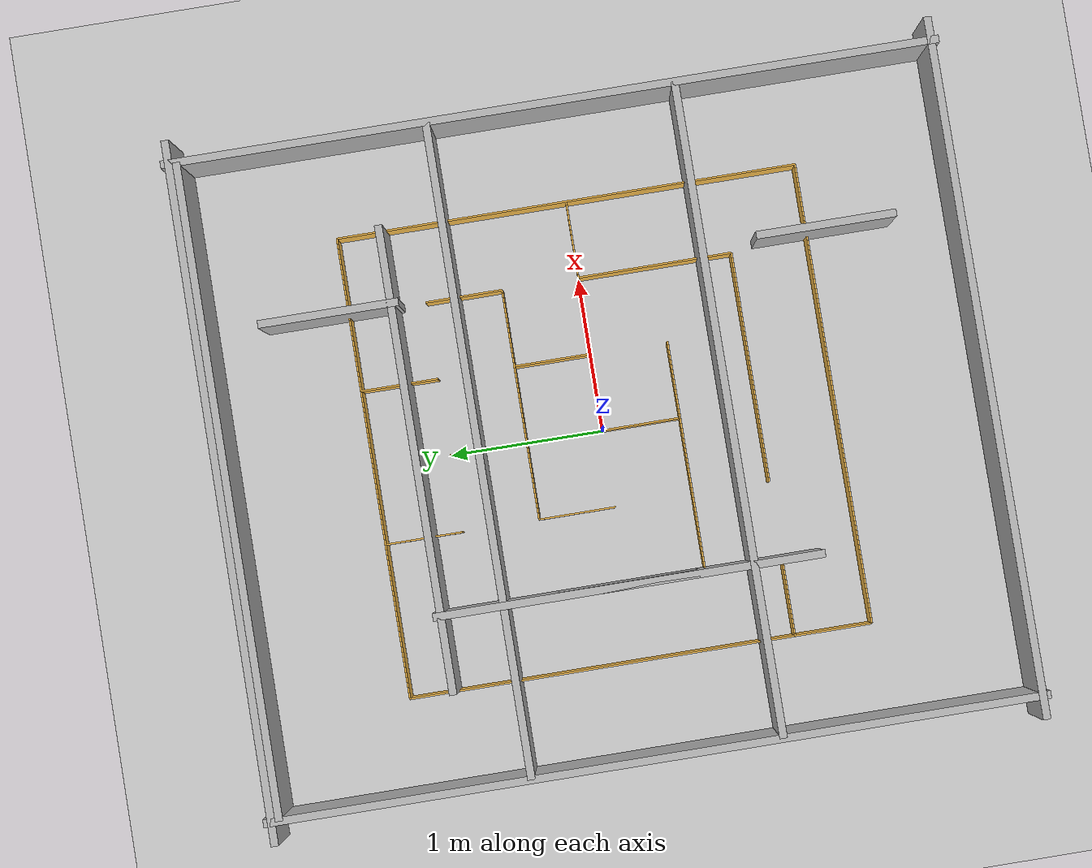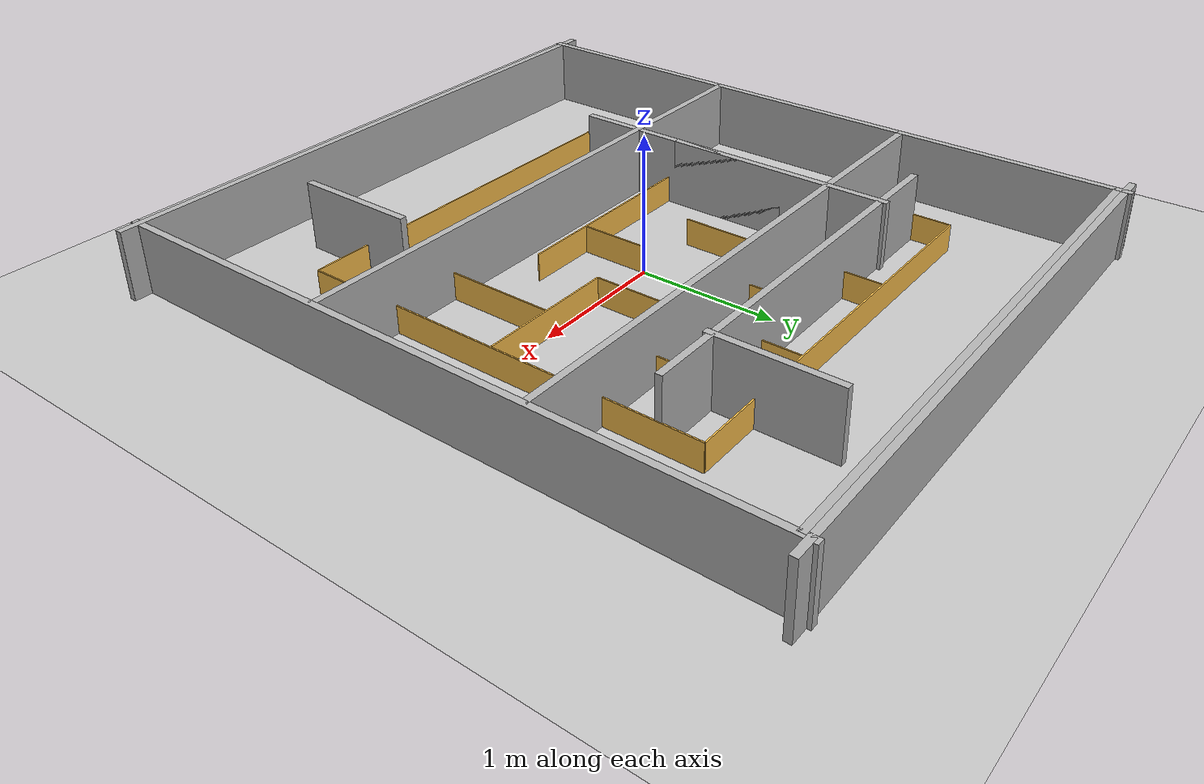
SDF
<?xml version="1.0"?>
<sdf version="1.8">
  <world name="maze_world">
    <!-- lighting & ground -->
    <include>
      <uri>model://sun</uri>
    </include>
    <include>
      <uri>model://ground_plane</uri>
    </include>

    <!-- Optional global physics (use defaults) -->
    <physics type="ode">
      <max_step_size>0.001</max_step_size>
      <real_time_update_rate>1000</real_time_update_rate>
      <real_time_factor>1</real_time_factor>
    </physics>

    <!-- ===== Outer & internal walls from your first snippet ===== -->

    <!-- ROW 1 horizontal walls -->
    <model name="wall_h_1">
      <static>true</static>
      <link name="link">
        <pose>0 1.2 0.25 0 0 0</pose>
        <collision name="collision">
          <geometry><box><size>3.0 0.05 0.5</size></box></geometry>
        </collision>
        <visual name="visual">
          <geometry><box><size>3.0 0.05 0.5</size></box></geometry>
        </visual>
      </link>
    </model>

    <!-- vertical walls, columns -->
    <model name="wall_v_1">
      <static>true</static>
      <link name="link">
        <pose>-1.0 0 0.25 0 0 0</pose>
        <collision name="collision">
          <geometry><box><size>0.05 2.5 0.5</size></box></geometry>
        </collision>
        <visual name="visual">
          <geometry><box><size>0.05 2.5 0.5</size></box></geometry>
        </visual>
      </link>
    </model>

    <!-- Horizontal top -->
    <model name="wall_h_top">
      <static>true</static>
      <link name="link">
        <pose>0 2.4 0.25 0 0 0</pose>
        <collision name="collision">
          <geometry><box><size>4.2 0.05 0.5</size></box></geometry>
        </collision>
        <visual name="visual">
          <geometry><box><size>4.2 0.05 0.5</size></box></geometry>
        </visual>
      </link>
    </model>

    <!-- Horizontal middle -->
    <model name="wall_h_mid">
      <static>true</static>
      <link name="link">
        <pose>0 0.8 0.25 0 0 0</pose>
        <collision name="collision">
          <geometry><box><size>4.2 0.05 0.5</size></box></geometry>
        </collision>
        <visual name="visual">
          <geometry><box><size>4.2 0.05 0.5</size></box></geometry>
        </visual>
      </link>
    </model>

    <!-- Horizontal lower -->
    <model name="wall_h_low">
      <static>true</static>
      <link name="link">
        <pose>0 -0.8 0.25 0 0 0</pose>
        <collision name="collision">
          <geometry><box><size>4.2 0.05 0.5</size></box></geometry>
        </collision>
        <visual name="visual">
          <geometry><box><size>4.2 0.05 0.5</size></box></geometry>
        </visual>
      </link>
    </model>

    <!-- Internal short walls -->
    <model name="wall_block_1">
      <static>true</static>
      <link name="link">
        <pose>1.0 1.6 0.25 0 0 0</pose>
        <collision name="collision">
          <geometry><box><size>0.05 0.9 0.5</size></box></geometry>
        </collision>
        <visual name="visual">
          <geometry><box><size>0.05 0.9 0.5</size></box></geometry>
        </visual>
      </link>
    </model>

    <model name="wall_block_2">
      <static>true</static>
      <link name="link">
        <pose>-1.0 0.0 0.25 0 0 0</pose>
        <collision name="collision">
          <geometry><box><size>0.05 0.9 0.5</size></box></geometry>
        </collision>
        <visual name="visual">
          <geometry><box><size>0.05 0.9 0.5</size></box></geometry>
        </visual>
      </link>
    </model>

    <model name="wall_block_3">
      <static>true</static>
      <link name="link">
        <pose>1.05 -1.6 0.25 0 0 0</pose>
        <collision name="collision">
          <geometry><box><size>0.05 0.9 0.5</size></box></geometry>
        </collision>
        <visual name="visual">
          <geometry><box><size>0.05 0.9 0.5</size></box></geometry>
        </visual>
      </link>
    </model>

    <!-- Left / Right boundaries -->
    <model name="wall_left">
      <static>true</static>
      <link name="link">
        <pose>-2.1 0 0.25 0 0 0</pose>
        <collision name="collision">
          <geometry><box><size>0.05 5.0 0.5</size></box></geometry>
        </collision>
        <visual name="visual">
          <geometry><box><size>0.05 5.0 0.5</size></box></geometry>
        </visual>
      </link>
    </model>

    <model name="wall_right">
      <static>true</static>
      <link name="link">
        <pose>2.1 0 0.25 0 0 0</pose>
        <collision name="collision">
          <geometry><box><size>0.05 5.0 0.5</size></box></geometry>
        </collision>
        <visual name="visual">
          <geometry><box><size>0.05 5.0 0.5</size></box></geometry>
        </visual>
      </link>
    </model>

    <!-- Front / back boundaries -->
    <model name="wall_front">
      <static>true</static>
      <link name="link">
        <pose>0 -2.45 0.25 0 0 0</pose>
        <collision name="collision">
          <geometry><box><size>4.5 0.05 0.5</size></box></geometry>
        </collision>
        <visual name="visual">
          <geometry><box><size>4.5 0.05 0.5</size></box></geometry>
        </visual>
      </link>
    </model>

    <model name="wall_back">
      <static>true</static>
      <link name="link">
        <pose>0 2.45 0.25 0 0 0</pose>
        <collision name="collision">
          <geometry><box><size>4.5 0.05 0.5</size></box></geometry>
        </collision>
        <visual name="visual">
          <geometry><box><size>4.5 0.05 0.5</size></box></geometry>
        </visual>
      </link>
    </model>

    <!-- ===== Embedded "my_maze" model from your second snippet ===== -->
    <!-- Shifted by (-1.5, -1.5, 0) so its 0..3 x/y extent sits within the -2.25..2.25 boundaries above -->
    <model name="my_maze">
      <static>true</static>
      <pose>-1.5 -1.5 0 0 0 0</pose>

      <link name="Wall_1">
        <pose>0 1.5 0 0 0 -1.5708</pose>
        <collision name="Wall_1_Collision">
          <pose>0 0 0.1 0 0 0</pose>
          <geometry><box><size>3 0.01 0.2</size></box></geometry>
        </collision>
        <visual name="Wall_1_Visual">
          <pose>0 0 0.1 0 0 0</pose>
          <geometry><box><size>3 0.01 0.2</size></box></geometry>
          <material>
            <script>
              <uri>file://media/materials/scripts/gazebo.material</uri>
              <name>Gazebo/Grey</name>
            </script>
            <ambient>1 0.764706 0.305882 1</ambient>
          </material>
        </visual>
      </link>

      <link name="Wall_2">
        <pose>1.5 0 0 0 0 0</pose>
        <collision name="Wall_2_Collision">
          <pose>0 0 0.1 0 0 0</pose>
          <geometry><box><size>3 0.01 0.2</size></box></geometry>
        </collision>
        <visual name="Wall_2_Visual">
          <pose>0 0 0.1 0 0 0</pose>
          <geometry><box><size>3 0.01 0.2</size></box></geometry>
          <material>
            <script>
              <uri>file://media/materials/scripts/gazebo.material</uri>
              <name>Gazebo/Grey</name>
            </script>
            <ambient>1 0.764706 0.305882 1</ambient>
          </material>
        </visual>
      </link>

      <link name="Wall_3">
        <pose>3 1.5 0 0 0 -1.5708</pose>
        <collision name="Wall_3_Collision">
          <pose>0 0 0.1 0 0 0</pose>
          <geometry><box><size>3 0.01 0.2</size></box></geometry>
        </collision>
        <visual name="Wall_3_Visual">
          <pose>0 0 0.1 0 0 0</pose>
          <geometry><box><size>3 0.01 0.2</size></box></geometry>
          <material>
            <script>
              <uri>file://media/materials/scripts/gazebo.material</uri>
              <name>Gazebo/Grey</name>
            </script>
            <ambient>1 0.764706 0.305882 1</ambient>
          </material>
        </visual>
      </link>

      <link name="Wall_4">
        <pose>1.5 3 0 0 0 0</pose>
        <collision name="Wall_4_Collision">
          <pose>0 0 0.1 0 0 0</pose>
          <geometry><box><size>3 0.01 0.2</size></box></geometry>
        </collision>
        <visual name="Wall_4_Visual">
          <pose>0 0 0.1 0 0 0</pose>
          <geometry><box><size>3 0.01 0.2</size></box></geometry>
          <material>
            <script>
              <uri>file://media/materials/scripts/gazebo.material</uri>
              <name>Gazebo/Grey</name>
            </script>
            <ambient>1 0.764706 0.305882 1</ambient>
          </material>
        </visual>
      </link>

      <link name="Wall_5">
        <pose>0.25 0.5 0 0 0 0</pose>
        <collision name="Wall_5_Collision">
          <pose>0 0 0.1 0 0 0</pose>
          <geometry><box><size>0.5 0.01 0.2</size></box></geometry>
        </collision>
        <visual name="Wall_5_Visual">
          <pose>0 0 0.1 0 0 0</pose>
          <geometry><box><size>0.5 0.01 0.2</size></box></geometry>
          <material>
            <script>
              <uri>file://media/materials/scripts/gazebo.material</uri>
              <name>Gazebo/Grey</name>
            </script>
            <ambient>1 0.764706 0.305882 1</ambient>
          </material>
        </visual>
      </link>

      <link name="Wall_6">
        <pose>1.75 0.5 0 0 0 0</pose>
        <collision name="Wall_6_Collision">
          <pose>0 0 0.1 0 0 0</pose>
          <geometry><box><size>1.5 0.01 0.2</size></box></geometry>
        </collision>
        <visual name="Wall_6_Visual">
          <pose>0 0 0.1 0 0 0</pose>
          <geometry><box><size>1.5 0.01 0.2</size></box></geometry>
          <material>
            <script>
              <uri>file://media/materials/scripts/gazebo.material</uri>
              <name>Gazebo/Grey</name>
            </script>
            <ambient>1 0.764706 0.305882 1</ambient>
          </material>
        </visual>
      </link>

      <link name="Wall_7">
        <pose>2.5 1 0 0 0 -1.5708</pose>
        <collision name="Wall_7_Collision">
          <pose>0 0 0.1 0 0 0</pose>
          <geometry><box><size>1 0.01 0.2</size></box></geometry>
        </collision>
        <visual name="Wall_7_Visual">
          <pose>0 0 0.1 0 0 0</pose>
          <geometry><box><size>1 0.01 0.2</size></box></geometry>
          <material>
            <script>
              <uri>file://media/materials/scripts/gazebo.material</uri>
              <name>Gazebo/Grey</name>
            </script>
            <ambient>1 0.764706 0.305882 1</ambient>
          </material>
        </visual>
      </link>

      <link name="Wall_8">
        <pose>2.5 1.5 0 0 0 0</pose>
        <collision name="Wall_8_Collision">
          <pose>0 0 0.1 0 0 0</pose>
          <geometry><box><size>1 0.01 0.2</size></box></geometry>
        </collision>
        <visual name="Wall_8_Visual">
          <pose>0 0 0.1 0 0 0</pose>
          <geometry><box><size>1 0.01 0.2</size></box></geometry>
          <material>
            <script>
              <uri>file://media/materials/scripts/gazebo.material</uri>
              <name>Gazebo/Grey</name>
            </script>
            <ambient>1 0.764706 0.305882 1</ambient>
          </material>
        </visual>
      </link>

      <link name="Wall_9">
        <pose>1.25 1 0 0 0 0</pose>
        <collision name="Wall_9_Collision">
          <pose>0 0 0.1 0 0 0</pose>
          <geometry><box><size>1.5 0.01 0.2</size></box></geometry>
        </collision>
        <visual name="Wall_9_Visual">
          <pose>0 0 0.1 0 0 0</pose>
          <geometry><box><size>1.5 0.01 0.2</size></box></geometry>
          <material>
            <script>
              <uri>file://media/materials/scripts/gazebo.material</uri>
              <name>Gazebo/Grey</name>
            </script>
            <ambient>1 0.764706 0.305882 1</ambient>
          </material>
        </visual>
      </link>

      <link name="Wall_10">
        <pose>1.5 1.25 0 0 0 -1.5708</pose>
        <collision name="Wall_10_Collision">
          <pose>0 0 0.1 0 0 0</pose>
          <geometry><box><size>0.5 0.01 0.2</size></box></geometry>
        </collision>
        <visual name="Wall_10_Visual">
          <pose>0 0 0.1 0 0 0</pose>
          <geometry><box><size>0.5 0.01 0.2</size></box></geometry>
          <material>
            <script>
              <uri>file://media/materials/scripts/gazebo.material</uri>
              <name>Gazebo/Grey</name>
            </script>
            <ambient>1 0.764706 0.305882 1</ambient>
          </material>
        </visual>
      </link>

      <link name="Wall_11">
        <pose>1 1.75 0 0 0 -1.5708</pose>
        <collision name="Wall_11_Collision">
          <pose>0 0 0.1 0 0 0</pose>
          <geometry><box><size>0.5 0.01 0.2</size></box></geometry>
        </collision>
        <visual name="Wall_11_Visual">
          <pose>0 0 0.1 0 0 0</pose>
          <geometry><box><size>0.5 0.01 0.2</size></box></geometry>
          <material>
            <script>
              <uri>file://media/materials/scripts/gazebo.material</uri>
              <name>Gazebo/Grey</name>
            </script>
            <ambient>1 0.764706 0.305882 1</ambient>
          </material>
        </visual>
      </link>

      <link name="Wall_12">
        <pose>0.5 1.75 0 0 0 -1.5708</pose>
        <collision name="Wall_12_Collision">
          <pose>0 0 0.1 0 0 0</pose>
          <geometry><box><size>1.5 0.01 0.2</size></box></geometry>
        </collision>
        <visual name="Wall_12_Visual">
          <pose>0 0 0.1 0 0 0</pose>
          <geometry><box><size>1.5 0.01 0.2</size></box></geometry>
          <material>
            <script>
              <uri>file://media/materials/scripts/gazebo.material</uri>
              <name>Gazebo/Grey</name>
            </script>
            <ambient>1 0.764706 0.305882 1</ambient>
          </material>
        </visual>
      </link>

      <link name="Wall_13">
        <pose>1.75 2 0 0 0 0</pose>
        <collision name="Wall_13_Collision">
          <pose>0 0 0.1 0 0 0</pose>
          <geometry><box><size>1.5 0.01 0.2</size></box></geometry>
        </collision>
        <visual name="Wall_13_Visual">
          <pose>0 0 0.1 0 0 0</pose>
          <geometry><box><size>1.5 0.01 0.2</size></box></geometry>
          <material>
            <script>
              <uri>file://media/materials/scripts/gazebo.material</uri>
              <name>Gazebo/Grey</name>
            </script>
            <ambient>1 0.764706 0.305882 1</ambient>
          </material>
        </visual>
      </link>

      <link name="Wall_14">
        <pose>2 1.75 0 0 0 -1.5708</pose>
        <collision name="Wall_14_Collision">
          <pose>0 0 0.1 0 0 0</pose>
          <geometry><box><size>0.5 0.01 0.2</size></box></geometry>
        </collision>
        <visual name="Wall_14_Visual">
          <pose>0 0 0.1 0 0 0</pose>
          <geometry><box><size>0.5 0.01 0.2</size></box></geometry>
          <material>
            <script>
              <uri>file://media/materials/scripts/gazebo.material</uri>
              <name>Gazebo/Grey</name>
            </script>
            <ambient>1 0.764706 0.305882 1</ambient>
          </material>
        </visual>
      </link>

      <link name="Wall_15">
        <pose>2.5 2.25 0 0 0 -1.5708</pose>
        <collision name="Wall_15_Collision">
          <pose>0 0 0.1 0 0 0</pose>
          <geometry><box><size>0.5 0.01 0.2</size></box></geometry>
        </collision>
        <visual name="Wall_15_Visual">
          <pose>0 0 0.1 0 0 0</pose>
          <geometry><box><size>0.5 0.01 0.2</size></box></geometry>
          <material>
            <script>
              <uri>file://media/materials/scripts/gazebo.material</uri>
              <name>Gazebo/Grey</name>
            </script>
            <ambient>1 0.764706 0.305882 1</ambient>
          </material>
        </visual>
      </link>

      <link name="Wall_16">
        <pose>1.5 2.25 0 0 0 -1.5708</pose>
        <collision name="Wall_16_Collision">
          <pose>0 0 0.1 0 0 0</pose>
          <geometry><box><size>0.5 0.01 0.2</size></box></geometry>
        </collision>
        <visual name="Wall_16_Visual">
          <pose>0 0 0.1 0 0 0</pose>
          <geometry><box><size>0.5 0.01 0.2</size></box></geometry>
          <material>
            <script>
              <uri>file://media/materials/scripts/gazebo.material</uri>
              <name>Gazebo/Grey</name>
            </script>
            <ambient>1 0.764706 0.305882 1</ambient>
          </material>
        </visual>
      </link>

      <link name="Wall_17">
        <pose>1 2.75 0 0 0 -1.5708</pose>
        <collision name="Wall_17_Collision">
          <pose>0 0 0.1 0 0 0</pose>
          <geometry><box><size>0.5 0.01 0.2</size></box></geometry>
        </collision>
        <visual name="Wall_17_Visual">
          <pose>0 0 0.1 0 0 0</pose>
          <geometry><box><size>0.5 0.01 0.2</size></box></geometry>
          <material>
            <script>
              <uri>file://media/materials/scripts/gazebo.material</uri>
              <name>Gazebo/Grey</name>
            </script>
            <ambient>1 0.764706 0.305882 1</ambient>
          </material>
        </visual>
      </link>

      <link name="Wall_18">
        <pose>2 2.75 0 0 0 -1.5708</pose>
        <collision name="Wall_18_Collision">
          <pose>0 0 0.1 0 0 0</pose>
          <geometry><box><size>0.5 0.01 0.2</size></box></geometry>
        </collision>
        <visual name="Wall_18_Visual">
          <pose>0 0 0.1 0 0 0</pose>
          <geometry><box><size>0.5 0.01 0.2</size></box></geometry>
          <material>
            <script>
              <uri>file://media/materials/scripts/gazebo.material</uri>
              <name>Gazebo/Grey</name>
            </script>
            <ambient>1 0.764706 0.305882 1</ambient>
          </material>
        </visual>
      </link>
    </model>

  </world>
</sdf>
